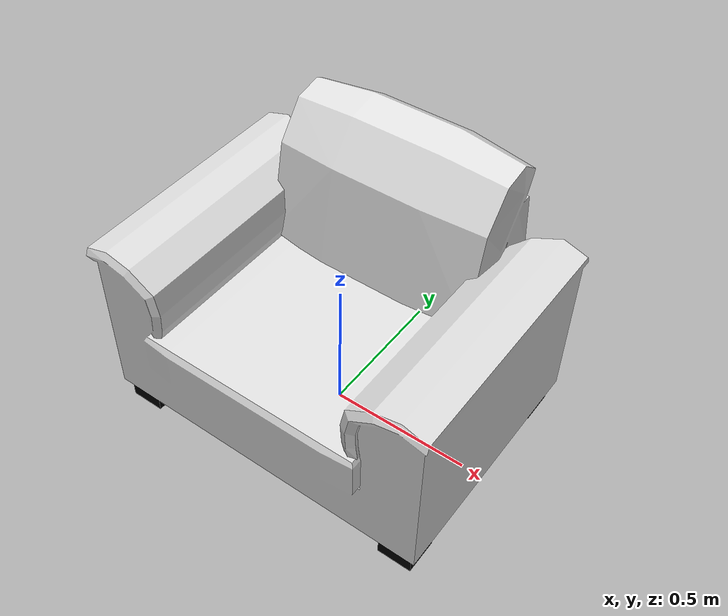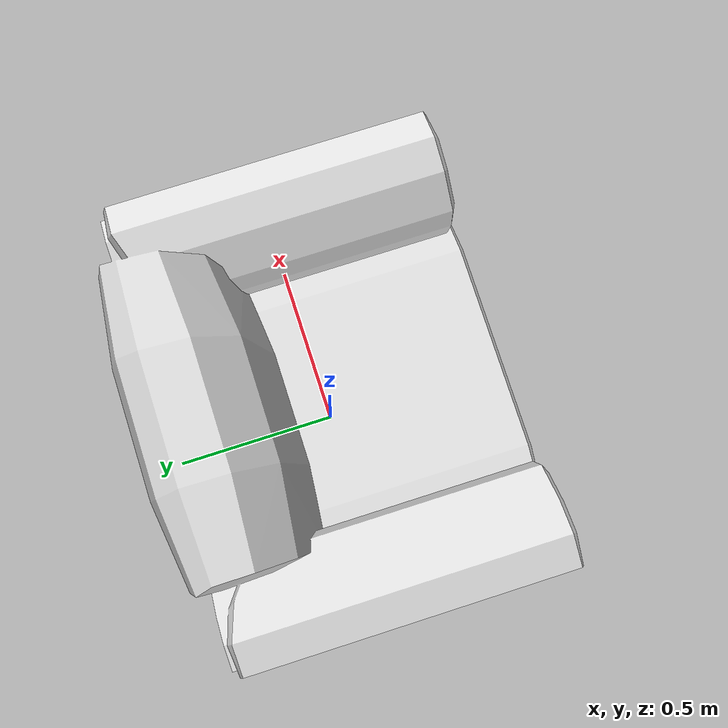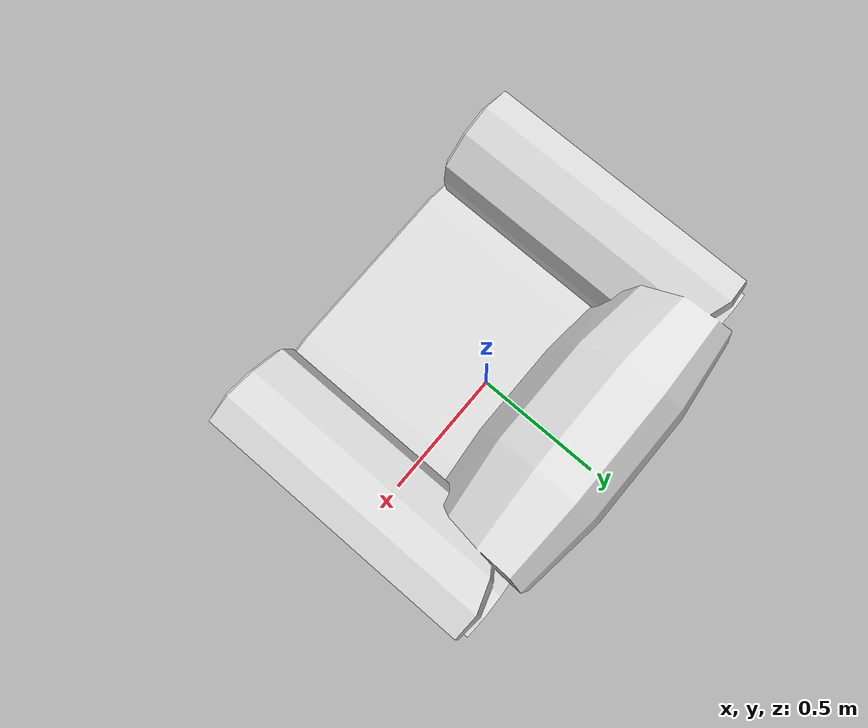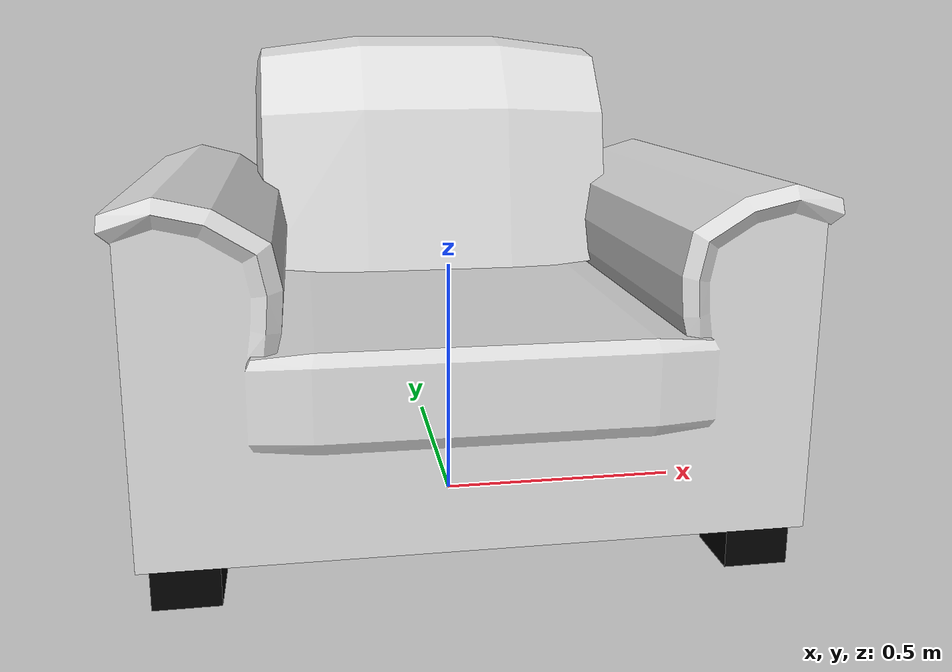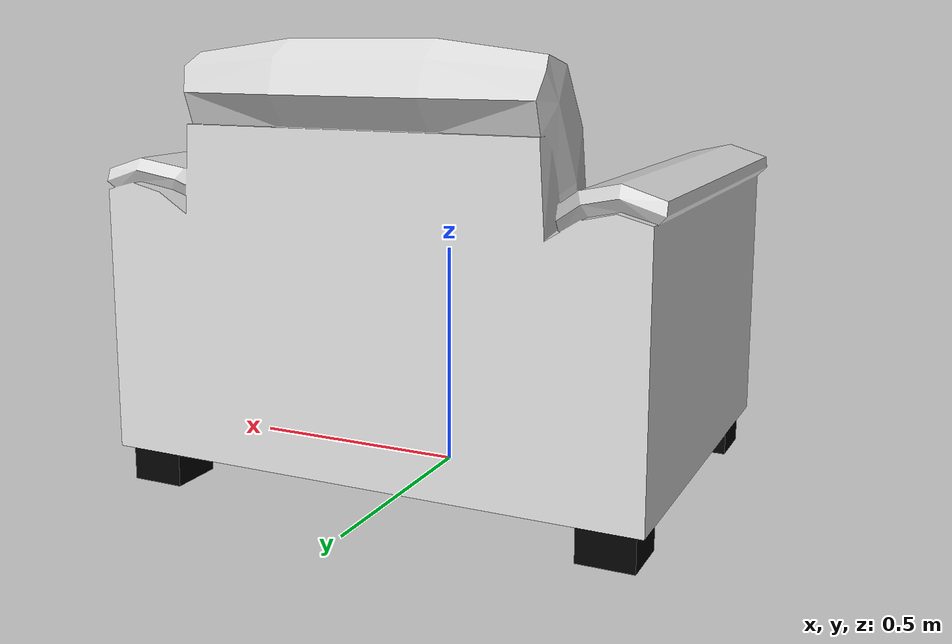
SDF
<?xml version='1.0'?>
<sdf version="1.4">
	<model name="armchair">
		<static>1</static>
		<link name="link">
			<visual name="mesh">
				<geometry>
					<mesh>
						<uri>model://meshes/armchair.dae</uri>
					</mesh>
				</geometry>
			</visual>
			<collision name="collider">
				<pose>0 0 0.45 0 0 0</pose>
				<geometry>
					<box>
						<size>1.23 0.966 0.9</size>
					</box>
				</geometry>
			</collision>
		</link>
	</model>
</sdf>
